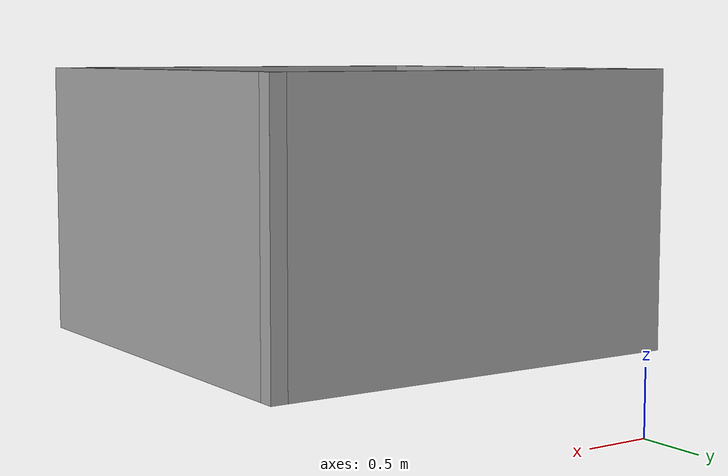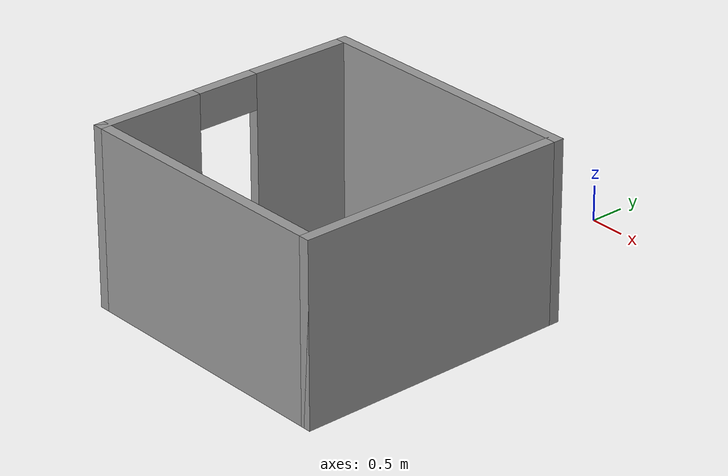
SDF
<?xml version='1.0'?>
<sdf version='1.7'>
  <model name='SmallRoom'>
    <pose>-0.345 -3.1225 0 0 -0 0</pose>
    <link name='Wall_0'>
      <pose>-1.925 -1.1225 0 0 -0 -1.5708</pose>
      <visual name='Wall_0_Visual_0'>
        <pose>-1.2075 0 1.25 0 -0 0</pose>
        <geometry>
          <box>
            <size>1.585 0.15 2.5</size>
          </box>
        </geometry>
        <material>
          <script>
            <uri>file://media/materials/scripts/gazebo.material</uri>
            <name>Gazebo/Grey</name>
          </script>
          <ambient>1 1 1 1</ambient>
        </material>
        <meta>
          <layer>0</layer>
        </meta>
      </visual>
      <collision name='Wall_0_Collision_0'>
        <geometry>
          <box>
            <size>1.585 0.15 2.5</size>
          </box>
        </geometry>
        <pose>-1.2075 0 1.25 0 -0 0</pose>
      </collision>
      <visual name='Wall_0_Visual_1'>
        <pose>1.2425 0 1.25 0 -0 0</pose>
        <geometry>
          <box>
            <size>1.515 0.15 2.5</size>
          </box>
        </geometry>
        <material>
          <script>
            <uri>file://media/materials/scripts/gazebo.material</uri>
            <name>Gazebo/Grey</name>
          </script>
          <ambient>1 1 1 1</ambient>
        </material>
        <meta>
          <layer>0</layer>
        </meta>
      </visual>
      <collision name='Wall_0_Collision_1'>
        <geometry>
          <box>
            <size>1.515 0.15 2.5</size>
          </box>
        </geometry>
        <pose>1.2425 0 1.25 0 -0 0</pose>
      </collision>
      <visual name='Wall_0_Visual_2'>
        <pose>0.035 0 2.25 0 -0 0</pose>
        <geometry>
          <box>
            <size>0.9 0.15 0.5</size>
          </box>
        </geometry>
        <material>
          <script>
            <uri>file://media/materials/scripts/gazebo.material</uri>
            <name>Gazebo/Grey</name>
          </script>
          <ambient>1 1 1 1</ambient>
        </material>
        <meta>
          <layer>0</layer>
        </meta>
      </visual>
      <collision name='Wall_0_Collision_2'>
        <geometry>
          <box>
            <size>0.9 0.15 0.5</size>
          </box>
        </geometry>
        <pose>0.035 0 2.25 0 -0 0</pose>
      </collision>
    </link>
    <link name='Wall_1'>
      <collision name='Wall_1_Collision'>
        <geometry>
          <box>
            <size>4 0.15 2.5</size>
          </box>
        </geometry>
        <pose>0 0 1.25 0 -0 0</pose>
      </collision>
      <visual name='Wall_1_Visual'>
        <pose>0 0 1.25 0 -0 0</pose>
        <geometry>
          <box>
            <size>4 0.15 2.5</size>
          </box>
        </geometry>
        <material>
          <script>
            <uri>file://media/materials/scripts/gazebo.material</uri>
            <name>Gazebo/Grey</name>
          </script>
          <ambient>1 1 1 1</ambient>
        </material>
        <meta>
          <layer>0</layer>
        </meta>
      </visual>
      <pose>-0 -3.0475 0 0 -0 0</pose>
    </link>
    <link name='Wall_2'>
      <collision name='Wall_2_Collision'>
        <geometry>
          <box>
            <size>4 0.15 2.5</size>
          </box>
        </geometry>
        <pose>0 0 1.25 0 -0 0</pose>
      </collision>
      <visual name='Wall_2_Visual'>
        <pose>0 0 1.25 0 -0 0</pose>
        <geometry>
          <box>
            <size>4 0.15 2.5</size>
          </box>
        </geometry>
        <material>
          <script>
            <uri>file://media/materials/scripts/gazebo.material</uri>
            <name>Gazebo/Grey</name>
          </script>
          <ambient>1 1 1 1</ambient>
        </material>
        <meta>
          <layer>0</layer>
        </meta>
      </visual>
      <pose>1.925 -1.1225 0 0 -0 1.5708</pose>
    </link>
    <link name='Wall_3'>
      <collision name='Wall_3_Collision'>
        <geometry>
          <box>
            <size>4 0.15 2.5</size>
          </box>
        </geometry>
        <pose>0 0 1.25 0 -0 0</pose>
      </collision>
      <visual name='Wall_3_Visual'>
        <pose>0 0 1.25 0 -0 0</pose>
        <geometry>
          <box>
            <size>4 0.15 2.5</size>
          </box>
        </geometry>
        <material>
          <script>
            <uri>file://media/materials/scripts/gazebo.material</uri>
            <name>Gazebo/Grey</name>
          </script>
          <ambient>1 1 1 1</ambient>
        </material>
        <meta>
          <layer>0</layer>
        </meta>
      </visual>
      <pose>-0 0.8025 0 0 -0 3.14159</pose>
    </link>
    <static>1</static>
  </model>
</sdf>
